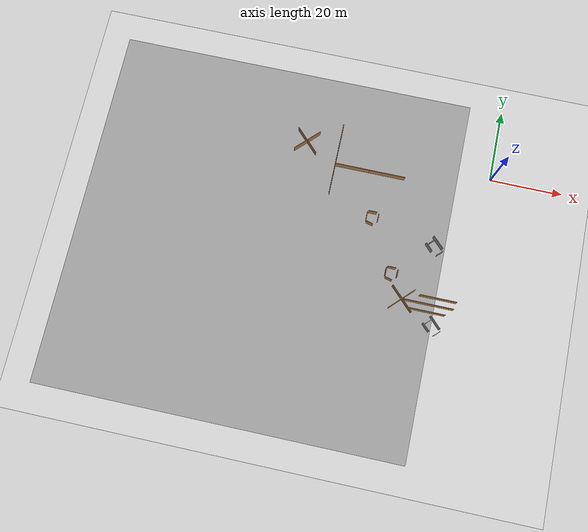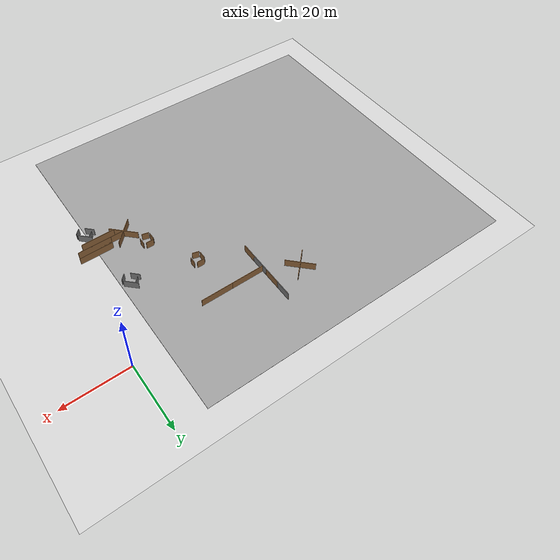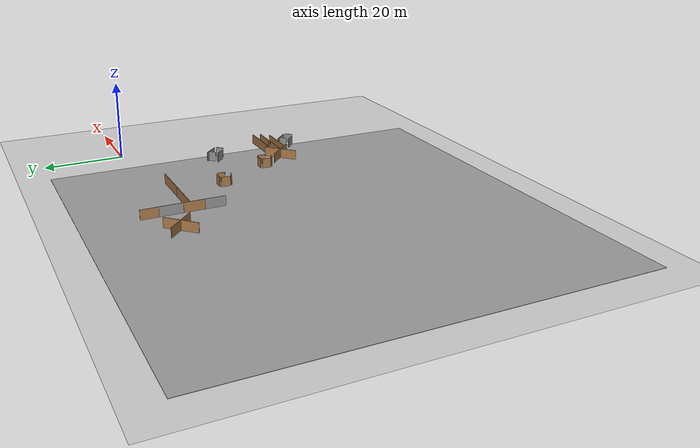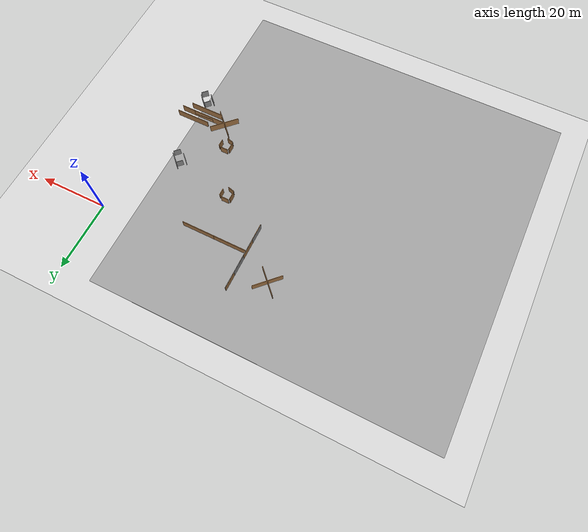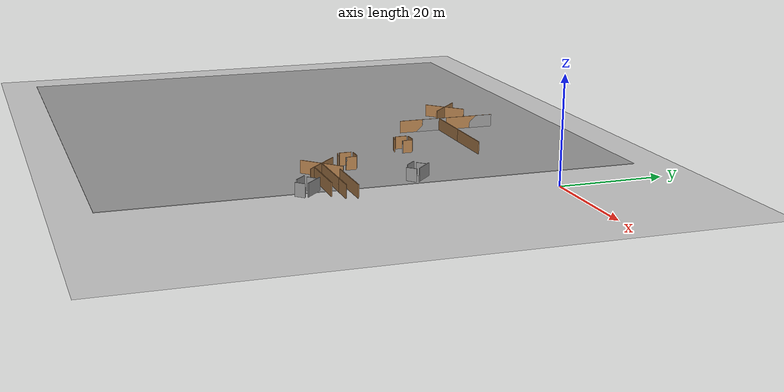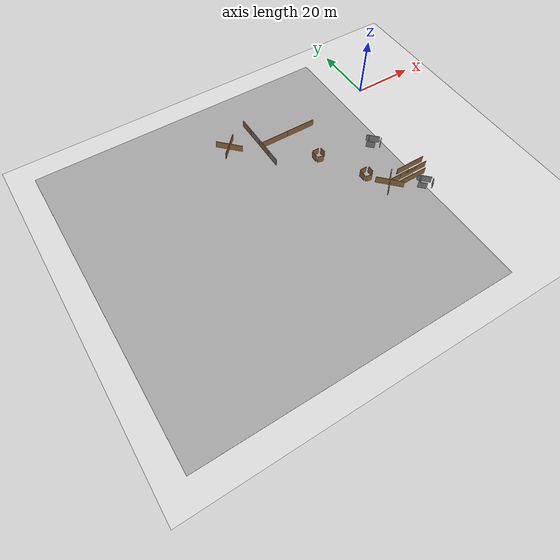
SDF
<sdf version="1.5">
 <world name="default">
  <model name="ground_plane">
   <static>1</static>
   <link name="link">
    <collision name="collision">
     <geometry><plane><normal>0 0 1</normal><size>100 100</size></plane></geometry>
     <surface><friction><ode><mu>100</mu><mu2>50</mu2></ode></friction></surface>
    </collision>
    <visual name="visual">
     <cast_shadows>0</cast_shadows>
     <geometry><plane><normal>0 0 1</normal><size>100 100</size></plane></geometry>
     <material>
      <script><uri>file://media/materials/scripts/gazebo.material</uri><name>Gazebo/Grey</name></script>
     </material>
    </visual>
   </link>
  </model>
  <model name="ground_plane_6">
   <static>1</static>
   <link name="link">
    <collision name="collision">
     <geometry><plane><normal>0 0 1</normal><size>100 100</size></plane></geometry>
     <surface><friction><ode><mu>100</mu><mu2>50</mu2></ode></friction></surface>
    </collision>
    <visual name="visual">
     <cast_shadows>0</cast_shadows>
     <geometry><plane><normal>0 0 1</normal><size>100 100</size></plane></geometry>
     <material>
      <script><uri>file://media/materials/scripts/gazebo.material</uri><name>Gazebo/Grey</name></script>
     </material>
    </visual>
   </link>
   <pose>-59 -30 0 0 -0 0</pose>
  </model>
  <model name="wall-10m-amodi_1">
   <pose>-43 1.54678 0 0 -0 0</pose>
   <link name="Wall_24">
    <collision name="Wall_24_Collision">
     <geometry><box><size>10 0.15 2.5</size></box></geometry>
     <pose>0 0 1.25 0 -0 0</pose>
    </collision>
    <visual name="Wall_24_Visual">
     <pose>0 0 1.25 0 -0 0</pose>
     <geometry><box><size>10 0.15 2.5</size></box></geometry>
     <material>
      <script><uri>file://media/materials/scripts/gazebo.material</uri><name>Gazebo/Grey</name></script>
      <ambient>1 1 1 1</ambient>
     </material>
    </visual>
    <pose>0 -0 0 0 0 -1.5708</pose>
   </link>
   <link name="Wall_25">
    <collision name="Wall_25_Collision">
     <geometry><box><size>10 0.15 2.5</size></box></geometry>
     <pose>0 0 1.25 0 -0 0</pose>
    </collision>
    <visual name="Wall_25_Visual">
     <pose>0 0 1.25 0 -0 0</pose>
     <geometry><box><size>10 0.15 2.5</size></box></geometry>
     <material>
      <script><uri>file://media/materials/scripts/gazebo.material</uri><name>Gazebo/Wood</name></script>
      <ambient>1 1 1 1</ambient>
     </material>
    </visual>
    <pose>0 -0 0 0 -0 1.5708</pose>
   </link>
   <static>1</static>
  </model>
  <model name="wall-10m-amodi_2">
   <pose>-43 -8.4725 0 0 -0 0</pose>
   <link name="Wall_24">
    <collision name="Wall_24_Collision">
     <geometry><box><size>10 0.15 2.5</size></box></geometry>
     <pose>0 0 1.25 0 -0 0</pose>
    </collision>
    <visual name="Wall_24_Visual">
     <pose>0 0 1.25 0 -0 0</pose>
     <geometry><box><size>10 0.15 2.5</size></box></geometry>
     <material>
      <script><uri>file://media/materials/scripts/gazebo.material</uri><name>Gazebo/Grey</name></script>
      <ambient>1 1 1 1</ambient>
     </material>
    </visual>
    <pose>0 -0 0 0 0 -1.5708</pose>
   </link>
   <link name="Wall_25">
    <collision name="Wall_25_Collision">
     <geometry><box><size>10 0.15 2.5</size></box></geometry>
     <pose>0 0 1.25 0 -0 0</pose>
    </collision>
    <visual name="Wall_25_Visual">
     <pose>0 0 1.25 0 -0 0</pose>
     <geometry><box><size>10 0.15 2.5</size></box></geometry>
     <material>
      <script><uri>file://media/materials/scripts/gazebo.material</uri><name>Gazebo/Wood</name></script>
      <ambient>1 1 1 1</ambient>
     </material>
    </visual>
    <pose>0 -0 0 0 -0 1.5708</pose>
   </link>
   <static>1</static>
  </model>
  <model name="wall-10m-ofoghi">
   <pose>-37.9745 -4.98114 0 0 -0 0</pose>
   <link name="Wall_22">
    <collision name="Wall_22_Collision">
     <geometry><box><size>10 0.15 2.5</size></box></geometry>
     <pose>0 0 1.25 0 -0 0</pose>
    </collision>
    <visual name="Wall_22_Visual">
     <pose>0 0 1.25 0 -0 0</pose>
     <geometry><box><size>10 0.15 2.5</size></box></geometry>
     <material>
      <script><uri>file://media/materials/scripts/gazebo.material</uri><name>Gazebo/Wood</name></script>
      <ambient>1 1 1 1</ambient>
     </material>
    </visual>
   </link>
   <static>1</static>
  </model>
  <model name="wall-10m-ofoghi_0">
   <pose>-28.366 -4.98164 0 0 -0 0</pose>
   <link name="Wall_22">
    <collision name="Wall_22_Collision">
     <geometry><box><size>10 0.15 2.5</size></box></geometry>
     <pose>0 0 1.25 0 -0 0</pose>
    </collision>
    <visual name="Wall_22_Visual">
     <pose>0 0 1.25 0 -0 0</pose>
     <geometry><box><size>10 0.15 2.5</size></box></geometry>
     <material>
      <script><uri>file://media/materials/scripts/gazebo.material</uri><name>Gazebo/Wood</name></script>
      <ambient>1 1 1 1</ambient>
     </material>
    </visual>
   </link>
   <static>1</static>
  </model>
  <model name="wall-10m-ofoghi_11">
   <pose>-9 -38 0 0 -0 0</pose>
   <link name="Wall_22">
    <collision name="Wall_22_Collision">
     <geometry><box><size>10 0.15 2.5</size></box></geometry>
     <pose>0 0 1.25 0 -0 0</pose>
    </collision>
    <visual name="Wall_22_Visual">
     <pose>0 0 1.25 0 -0 0</pose>
     <geometry><box><size>10 0.15 2.5</size></box></geometry>
     <material>
      <script><uri>file://media/materials/scripts/gazebo.material</uri><name>Gazebo/Wood</name></script>
      <ambient>1 1 1 1</ambient>
     </material>
    </visual>
   </link>
   <static>1</static>
  </model>
  <model name="obs2">
   <pose>-9 -43.4324 0 0 -0 0</pose>
   <link name="Wall_0">
    <collision name="Wall_0_Collision">
     <geometry><box><size>2 0.15 2.5</size></box></geometry>
     <pose>0 0 1.25 0 -0 0</pose>
    </collision>
    <visual name="Wall_0_Visual">
     <pose>0 0 1.25 0 -0 0</pose>
     <geometry><box><size>2 0.15 2.5</size></box></geometry>
     <material>
      <script><uri>file://media/materials/scripts/gazebo.material</uri><name>Gazebo/Grey</name></script>
      <ambient>1 1 1 1</ambient>
     </material>
    </visual>
    <pose>-0.796332 1.10862 0 0 -0 0.785398</pose>
   </link>
   <link name="Wall_2">
    <collision name="Wall_2_Collision">
     <geometry><box><size>4.25 0.15 2.5</size></box></geometry>
     <pose>0 0 1.25 0 -0 0</pose>
    </collision>
    <visual name="Wall_2_Visual">
     <pose>0 0 1.25 0 -0 0</pose>
     <geometry><box><size>4.25 0.15 2.5</size></box></geometry>
     <material>
      <script><uri>file://media/materials/scripts/gazebo.material</uri><name>Gazebo/Grey</name></script>
      <ambient>1 1 1 1</ambient>
     </material>
    </visual>
    <pose>0.773928 0.982661 0 0 0 -0.785398</pose>
   </link>
   <link name="Wall_4">
    <collision name="Wall_4_Collision">
     <geometry><box><size>2.75 0.15 2.5</size></box></geometry>
     <pose>0 0 1.25 0 -0 0</pose>
    </collision>
    <visual name="Wall_4_Visual">
     <pose>0 0 1.25 0 -0 0</pose>
     <geometry><box><size>2.75 0.15 2.5</size></box></geometry>
     <material>
      <script><uri>file://media/materials/scripts/gazebo.material</uri><name>Gazebo/Grey</name></script>
      <ambient>1 1 1 1</ambient>
     </material>
    </visual>
    <pose>-1.45556 -0.740711 0 0 0 -0.785398</pose>
   </link>
   <link name="Wall_6">
    <collision name="Wall_6_Collision">
     <geometry><box><size>2 0.15 2.5</size></box></geometry>
     <pose>0 0 1.25 0 -0 0</pose>
    </collision>
    <visual name="Wall_6_Visual">
     <pose>0 0 1.25 0 -0 0</pose>
     <geometry><box><size>2 0.15 2.5</size></box></geometry>
     <material>
      <script><uri>file://media/materials/scripts/gazebo.material</uri><name>Gazebo/Grey</name></script>
      <ambient>1 1 1 1</ambient>
     </material>
    </visual>
    <pose>1.72073 -1.77816 0 0 -0 0.785398</pose>
   </link>
   <static>1</static>
  </model>
  <model name="obs2_7">
   <pose>-12 -22 0 0 -0 0</pose>
   <link name="Wall_0">
    <collision name="Wall_0_Collision">
     <geometry><box><size>2 0.15 2.5</size></box></geometry>
     <pose>0 0 1.25 0 -0 0</pose>
    </collision>
    <visual name="Wall_0_Visual">
     <pose>0 0 1.25 0 -0 0</pose>
     <geometry><box><size>2 0.15 2.5</size></box></geometry>
     <material>
      <script><uri>file://media/materials/scripts/gazebo.material</uri><name>Gazebo/Grey</name></script>
      <ambient>1 1 1 1</ambient>
     </material>
    </visual>
    <pose>-0.796332 1.10862 0 0 -0 0.785398</pose>
   </link>
   <link name="Wall_2">
    <collision name="Wall_2_Collision">
     <geometry><box><size>4.25 0.15 2.5</size></box></geometry>
     <pose>0 0 1.25 0 -0 0</pose>
    </collision>
    <visual name="Wall_2_Visual">
     <pose>0 0 1.25 0 -0 0</pose>
     <geometry><box><size>4.25 0.15 2.5</size></box></geometry>
     <material>
      <script><uri>file://media/materials/scripts/gazebo.material</uri><name>Gazebo/Grey</name></script>
      <ambient>1 1 1 1</ambient>
     </material>
    </visual>
    <pose>0.773928 0.982661 0 0 0 -0.785398</pose>
   </link>
   <link name="Wall_4">
    <collision name="Wall_4_Collision">
     <geometry><box><size>2.75 0.15 2.5</size></box></geometry>
     <pose>0 0 1.25 0 -0 0</pose>
    </collision>
    <visual name="Wall_4_Visual">
     <pose>0 0 1.25 0 -0 0</pose>
     <geometry><box><size>2.75 0.15 2.5</size></box></geometry>
     <material>
      <script><uri>file://media/materials/scripts/gazebo.material</uri><name>Gazebo/Grey</name></script>
      <ambient>1 1 1 1</ambient>
     </material>
    </visual>
    <pose>-1.45556 -0.740711 0 0 0 -0.785398</pose>
   </link>
   <link name="Wall_6">
    <collision name="Wall_6_Collision">
     <geometry><box><size>2 0.15 2.5</size></box></geometry>
     <pose>0 0 1.25 0 -0 0</pose>
    </collision>
    <visual name="Wall_6_Visual">
     <pose>0 0 1.25 0 -0 0</pose>
     <geometry><box><size>2 0.15 2.5</size></box></geometry>
     <material>
      <script><uri>file://media/materials/scripts/gazebo.material</uri><name>Gazebo/Grey</name></script>
      <ambient>1 1 1 1</ambient>
     </material>
    </visual>
    <pose>1.72073 -1.77816 0 0 -0 0.785398</pose>
   </link>
   <static>1</static>
  </model>
  <model name="obs1_10">
   <pose>-30 -18 0 0 -0 0</pose>
   <link name="Wall_10">
    <collision name="Wall_10_Collision">
     <geometry><box><size>2 0.15 2.5</size></box></geometry>
     <pose>0 0 1.25 0 -0 0</pose>
    </collision>
    <visual name="Wall_10_Visual">
     <pose>0 0 1.25 0 -0 0</pose>
     <geometry><box><size>2 0.15 2.5</size></box></geometry>
     <material>
      <script><uri>file://media/materials/scripts/gazebo.material</uri><name>Gazebo/Wood</name></script>
      <ambient>1 1 1 1</ambient>
     </material>
    </visual>
    <pose>-0.505188 -1.46687 0 0 0 -0.261799</pose>
   </link>
   <link name="Wall_2">
    <collision name="Wall_2_Collision">
     <geometry><box><size>2.25 0.15 2.5</size></box></geometry>
     <pose>0 0 1.25 0 -0 0</pose>
    </collision>
    <visual name="Wall_2_Visual">
     <pose>0 0 1.25 0 -0 0</pose>
     <geometry><box><size>2.25 0.15 2.5</size></box></geometry>
     <material>
      <script><uri>file://media/materials/scripts/gazebo.material</uri><name>Gazebo/Wood</name></script>
      <ambient>1 1 1 1</ambient>
     </material>
    </visual>
    <pose>-1.58039 0.313508 0 0 0 -1.5708</pose>
   </link>
   <link name="Wall_5">
    <collision name="Wall_5_Collision">
     <geometry><box><size>2.25 0.15 2.5</size></box></geometry>
     <pose>0 0 1.25 0 -0 0</pose>
    </collision>
    <visual name="Wall_5_Visual">
     <pose>0 0 1.25 0 -0 0</pose>
     <geometry><box><size>2.25 0.15 2.5</size></box></geometry>
     <material>
      <script><uri>file://media/materials/scripts/gazebo.material</uri><name>Gazebo/Wood</name></script>
      <ambient>1 1 1 1</ambient>
     </material>
    </visual>
    <pose>-0.185262 1.72313 0 0 -0 0</pose>
   </link>
   <link name="Wall_7">
    <collision name="Wall_7_Collision">
     <geometry><box><size>2 0.15 2.5</size></box></geometry>
     <pose>0 0 1.25 0 -0 0</pose>
    </collision>
    <visual name="Wall_7_Visual">
     <pose>0 0 1.25 0 -0 0</pose>
     <geometry><box><size>2 0.15 2.5</size></box></geometry>
     <material>
      <script><uri>file://media/materials/scripts/gazebo.material</uri><name>Gazebo/Wood</name></script>
      <ambient>1 1 1 1</ambient>
     </material>
    </visual>
    <pose>1.58039 0.398833 0 0 0 -1.5708</pose>
   </link>
   <link name="Wall_8">
    <collision name="Wall_8_Collision">
     <geometry><box><size>0.15 0.15 2.5</size></box></geometry>
     <pose>0 0 1.25 0 -0 0</pose>
    </collision>
    <visual name="Wall_8_Visual">
     <pose>0 0 1.25 0 -0 0</pose>
     <geometry><box><size>0.15 0.15 2.5</size></box></geometry>
     <material>
      <script><uri>file://media/materials/scripts/gazebo.material</uri><name>Gazebo/Grey</name></script>
      <ambient>1 1 1 1</ambient>
     </material>
    </visual>
    <pose>1.58039 -0.526167 0 0 -0 0</pose>
   </link>
   <static>1</static>
  </model>
  <model name="obs1_12">
   <pose>-22 -32 0 0 -0 0</pose>
   <link name="Wall_10">
    <collision name="Wall_10_Collision">
     <geometry><box><size>2 0.15 2.5</size></box></geometry>
     <pose>0 0 1.25 0 -0 0</pose>
    </collision>
    <visual name="Wall_10_Visual">
     <pose>0 0 1.25 0 -0 0</pose>
     <geometry><box><size>2 0.15 2.5</size></box></geometry>
     <material>
      <script><uri>file://media/materials/scripts/gazebo.material</uri><name>Gazebo/Wood</name></script>
      <ambient>1 1 1 1</ambient>
     </material>
    </visual>
    <pose>-0.505188 -1.46687 0 0 0 -0.261799</pose>
   </link>
   <link name="Wall_2">
    <collision name="Wall_2_Collision">
     <geometry><box><size>2.25 0.15 2.5</size></box></geometry>
     <pose>0 0 1.25 0 -0 0</pose>
    </collision>
    <visual name="Wall_2_Visual">
     <pose>0 0 1.25 0 -0 0</pose>
     <geometry><box><size>2.25 0.15 2.5</size></box></geometry>
     <material>
      <script><uri>file://media/materials/scripts/gazebo.material</uri><name>Gazebo/Wood</name></script>
      <ambient>1 1 1 1</ambient>
     </material>
    </visual>
    <pose>-1.58039 0.313508 0 0 0 -1.5708</pose>
   </link>
   <link name="Wall_5">
    <collision name="Wall_5_Collision">
     <geometry><box><size>2.25 0.15 2.5</size></box></geometry>
     <pose>0 0 1.25 0 -0 0</pose>
    </collision>
    <visual name="Wall_5_Visual">
     <pose>0 0 1.25 0 -0 0</pose>
     <geometry><box><size>2.25 0.15 2.5</size></box></geometry>
     <material>
      <script><uri>file://media/materials/scripts/gazebo.material</uri><name>Gazebo/Wood</name></script>
      <ambient>1 1 1 1</ambient>
     </material>
    </visual>
    <pose>-0.185262 1.72313 0 0 -0 0</pose>
   </link>
   <link name="Wall_7">
    <collision name="Wall_7_Collision">
     <geometry><box><size>2 0.15 2.5</size></box></geometry>
     <pose>0 0 1.25 0 -0 0</pose>
    </collision>
    <visual name="Wall_7_Visual">
     <pose>0 0 1.25 0 -0 0</pose>
     <geometry><box><size>2 0.15 2.5</size></box></geometry>
     <material>
      <script><uri>file://media/materials/scripts/gazebo.material</uri><name>Gazebo/Wood</name></script>
      <ambient>1 1 1 1</ambient>
     </material>
    </visual>
    <pose>1.58039 0.398833 0 0 0 -1.5708</pose>
   </link>
   <link name="Wall_8">
    <collision name="Wall_8_Collision">
     <geometry><box><size>0.15 0.15 2.5</size></box></geometry>
     <pose>0 0 1.25 0 -0 0</pose>
    </collision>
    <visual name="Wall_8_Visual">
     <pose>0 0 1.25 0 -0 0</pose>
     <geometry><box><size>0.15 0.15 2.5</size></box></geometry>
     <material>
      <script><uri>file://media/materials/scripts/gazebo.material</uri><name>Gazebo/Grey</name></script>
      <ambient>1 1 1 1</ambient>
     </material>
    </visual>
    <pose>1.58039 -0.526167 0 0 -0 0</pose>
   </link>
   <static>1</static>
  </model>
  <model name="obs3_5">
   <pose>-52 0 0 0 -0 0</pose>
   <link name="Wall_0">
    <collision name="Wall_0_Collision">
     <geometry><box><size>8.63528 0.15 2.5</size></box></geometry>
     <pose>0 0 1.25 0 -0 0</pose>
    </collision>
    <visual name="Wall_0_Visual">
     <pose>0 0 1.25 0 -0 0</pose>
     <geometry><box><size>8.63528 0.15 2.5</size></box></geometry>
     <material>
      <script><uri>file://media/materials/scripts/gazebo.material</uri><name>Gazebo/Wood</name></script>
      <ambient>1 1 1 1</ambient>
     </material>
    </visual>
    <pose>0 0 0 0 0 -0.785398</pose>
   </link>
   <link name="Wall_2">
    <collision name="Wall_2_Collision">
     <geometry><box><size>8.63528 0.15 2.5</size></box></geometry>
     <pose>0 0 1.25 0 -0 0</pose>
    </collision>
    <visual name="Wall_2_Visual">
     <pose>0 0 1.25 0 -0 0</pose>
     <geometry><box><size>8.63528 0.15 2.5</size></box></geometry>
     <material>
      <script><uri>file://media/materials/scripts/gazebo.material</uri><name>Gazebo/Wood</name></script>
      <ambient>1 1 1 1</ambient>
     </material>
    </visual>
    <pose>0 0 0 0 0 -2.35619</pose>
   </link>
   <static>1</static>
  </model>
  <model name="obs3_7">
   <pose>-18 -38 0 0 -0 0</pose>
   <link name="Wall_0">
    <collision name="Wall_0_Collision">
     <geometry><box><size>8.63528 0.15 2.5</size></box></geometry>
     <pose>0 0 1.25 0 -0 0</pose>
    </collision>
    <visual name="Wall_0_Visual">
     <pose>0 0 1.25 0 -0 0</pose>
     <geometry><box><size>8.63528 0.15 2.5</size></box></geometry>
     <material>
      <script><uri>file://media/materials/scripts/gazebo.material</uri><name>Gazebo/Wood</name></script>
      <ambient>1 1 1 1</ambient>
     </material>
    </visual>
    <pose>0 0 0 0 0 -0.785398</pose>
   </link>
   <link name="Wall_2">
    <collision name="Wall_2_Collision">
     <geometry><box><size>8.63528 0.15 2.5</size></box></geometry>
     <pose>0 0 1.25 0 -0 0</pose>
    </collision>
    <visual name="Wall_2_Visual">
     <pose>0 0 1.25 0 -0 0</pose>
     <geometry><box><size>8.63528 0.15 2.5</size></box></geometry>
     <material>
      <script><uri>file://media/materials/scripts/gazebo.material</uri><name>Gazebo/Wood</name></script>
      <ambient>1 1 1 1</ambient>
     </material>
    </visual>
    <pose>0 0 0 0 0 -2.35619</pose>
   </link>
   <static>1</static>
  </model>
  <model name="wall-10m-ofoghi_19">
   <pose>-11 -40 0 0 -0 0</pose>
   <link name="Wall_22">
    <collision name="Wall_22_Collision">
     <geometry><box><size>10 0.15 2.5</size></box></geometry>
     <pose>0 0 1.25 0 -0 0</pose>
    </collision>
    <visual name="Wall_22_Visual">
     <pose>0 0 1.25 0 -0 0</pose>
     <geometry><box><size>10 0.15 2.5</size></box></geometry>
     <material>
      <script><uri>file://media/materials/scripts/gazebo.material</uri><name>Gazebo/Wood</name></script>
      <ambient>1 1 1 1</ambient>
     </material>
    </visual>
   </link>
   <static>1</static>
  </model>
  <model name="wall-10m-ofoghi_20">
   <pose>-8.53189 -36 0 0 -0 0</pose>
   <link name="Wall_22">
    <collision name="Wall_22_Collision">
     <geometry><box><size>10 0.15 2.5</size></box></geometry>
     <pose>0 0 1.25 0 -0 0</pose>
    </collision>
    <visual name="Wall_22_Visual">
     <pose>0 0 1.25 0 -0 0</pose>
     <geometry><box><size>10 0.15 2.5</size></box></geometry>
     <material>
      <script><uri>file://media/materials/scripts/gazebo.material</uri><name>Gazebo/Wood</name></script>
      <ambient>1 1 1 1</ambient>
     </material>
    </visual>
   </link>
   <static>1</static>
  </model>
  <model name="wall-10m-ofoghi_21">
   <pose>-13 -38 0 0 -0 0</pose>
   <link name="Wall_22">
    <collision name="Wall_22_Collision">
     <geometry><box><size>10 0.15 2.5</size></box></geometry>
     <pose>0 0 1.25 0 -0 0</pose>
    </collision>
    <visual name="Wall_22_Visual">
     <pose>0 0 1.25 0 -0 0</pose>
     <geometry><box><size>10 0.15 2.5</size></box></geometry>
     <material>
      <script><uri>file://media/materials/scripts/gazebo.material</uri><name>Gazebo/Wood</name></script>
      <ambient>1 1 1 1</ambient>
     </material>
    </visual>
   </link>
   <static>1</static>
  </model>
 </world>
</sdf>
